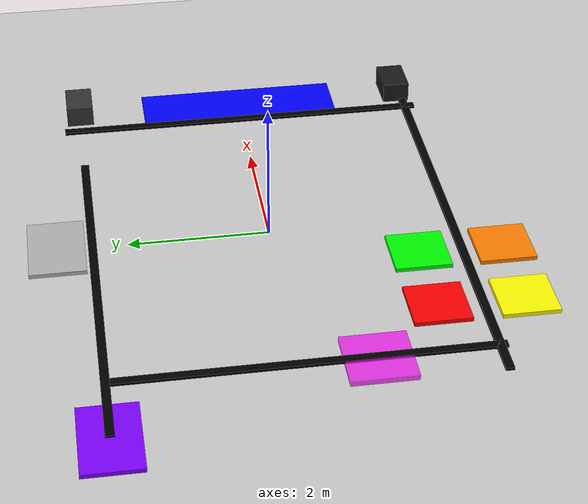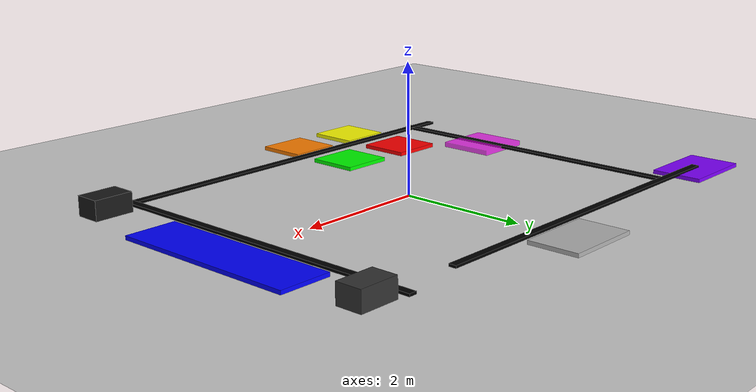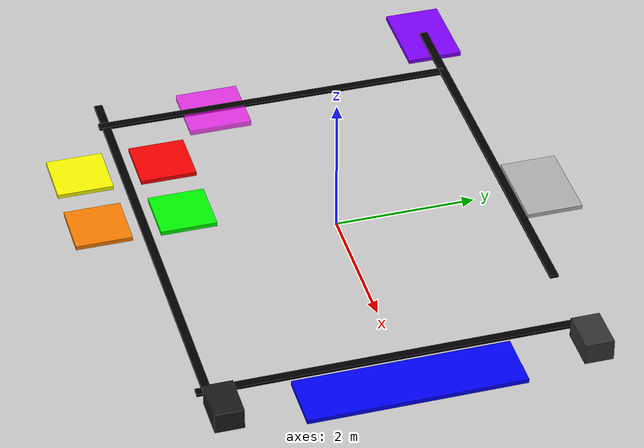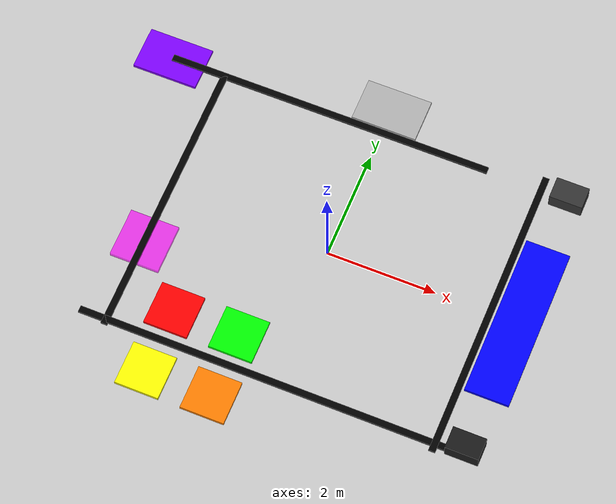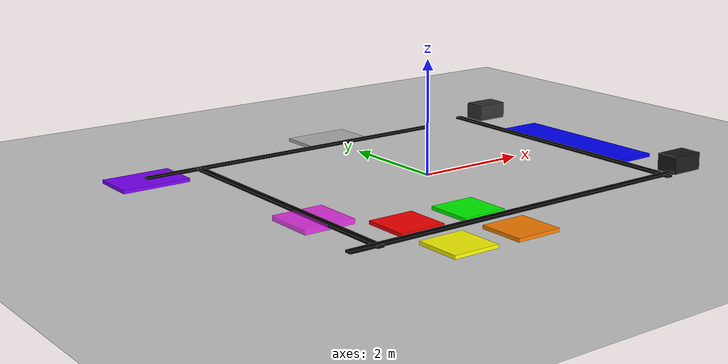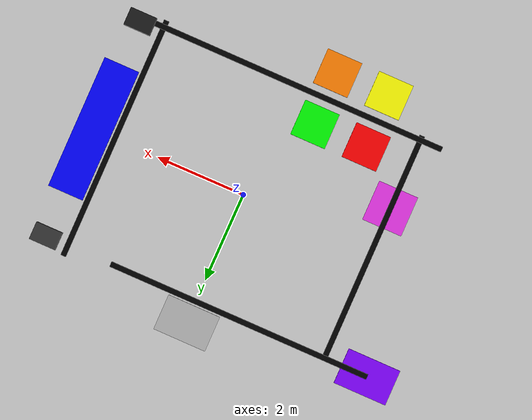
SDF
<?xml version="1.0" ?>
<sdf version="1.6">
  <world name="agv_factory_world">

    <include>
      <uri>model://sun</uri>
    </include>

    <include>
      <uri>model://ground_plane</uri>
    </include>

    <!-- A Zone -->
    <model name="zone_A">
      <static>true</static>
      <pose>-2 -2 0.03 0 0 0</pose>
      <link name="link">
        <visual name="visual">
          <geometry><box><size>0.8 0.8 0.06</size></box></geometry>
          <material><ambient>1 0 0 1</ambient><diffuse>1 0 0 1</diffuse></material>
        </visual>
        <collision name="collision">
          <geometry><box><size>0.8 0.8 0.06</size></box></geometry>
        </collision>
      </link>
    </model>

    <!-- B Zone -->
    <model name="zone_B">
      <static>true</static>
      <pose>-0.8 -2 0.03 0 0 0</pose>
      <link name="link">
        <visual name="visual">
          <geometry><box><size>0.8 0.8 0.06</size></box></geometry>
          <material><ambient>0 1 0 1</ambient><diffuse>0 1 0 1</diffuse></material>
        </visual>
        <collision name="collision">
          <geometry><box><size>0.8 0.8 0.06</size></box></geometry>
        </collision>
      </link>
    </model>

    <!-- C Zone -->
    <model name="zone_C">
      <static>true</static>
      <pose>-2 -3.2 0.03 0 0 0</pose>
      <link name="link">
        <visual name="visual">
          <geometry><box><size>0.8 0.8 0.06</size></box></geometry>
          <material><ambient>1 1 0 1</ambient><diffuse>1 1 0 1</diffuse></material>
        </visual>
        <collision name="collision">
          <geometry><box><size>0.8 0.8 0.06</size></box></geometry>
        </collision>
      </link>
    </model>

    <!-- D Zone -->
    <model name="zone_D">
      <static>true</static>
      <pose>-0.8 -3.2 0.03 0 0 0</pose>
      <link name="link">
        <visual name="visual">
          <geometry><box><size>0.8 0.8 0.06</size></box></geometry>
          <material><ambient>1 0.5 0 1</ambient><diffuse>1 0.5 0 1</diffuse></material>
        </visual>
        <collision name="collision">
          <geometry><box><size>0.8 0.8 0.06</size></box></geometry>
        </collision>
      </link>
    </model>

    <!-- Container Zone -->
    <model name="container_zone">
      <static>true</static>
      <pose>3.5 0 0.03 0 0 0</pose>
      <link name="link">
        <visual name="visual">
          <geometry><box><size>0.8 3.0 0.06</size></box></geometry>
          <material><ambient>0 0 1 1</ambient><diffuse>0 0 1 1</diffuse></material>
        </visual>
        <collision name="collision">
          <geometry><box><size>0.8 3.0 0.06</size></box></geometry>
        </collision>
      </link>
    </model>

    <!-- Final Box Zone -->
    <model name="final_box_zone">
      <static>true</static>
      <pose>0 3 0.03 0 0 0</pose>
      <link name="link">
        <visual name="visual">
          <geometry><box><size>1.2 0.8 0.06</size></box></geometry>
          <material><ambient>0.7 0.7 0.7 1</ambient><diffuse>0.7 0.7 0.7 1</diffuse></material>
        </visual>
        <collision name="collision">
          <geometry><box><size>1.2 0.8 0.06</size></box></geometry>
        </collision>
      </link>
    </model>

    <!-- In/Out Zone -->
    <model name="inout_zone">
      <static>true</static>
      <pose>-4 2.5 0.03 0 0 0</pose>
      <link name="link">
        <visual name="visual">
          <geometry><box><size>1.2 0.8 0.06</size></box></geometry>
          <material><ambient>0.5 0 1 1</ambient><diffuse>0.5 0 1 1</diffuse></material>
        </visual>
        <collision name="collision">
          <geometry><box><size>1.2 0.8 0.06</size></box></geometry>
        </collision>
      </link>
    </model>

    <!-- Cross Zone -->
    <model name="cross_zone">
      <static>true</static>
      <pose>-3 -1 0.04 0 0 0</pose>
      <link name="link">
        <visual name="visual">
          <geometry><box><size>0.9 0.9 0.08</size></box></geometry>
          <material><ambient>1 0 1 0.7</ambient><diffuse>1 0 1 0.7</diffuse></material>
        </visual>
        <collision name="collision">
          <geometry><box><size>0.9 0.9 0.08</size></box></geometry>
        </collision>
      </link>
    </model>

    <!-- Black Road Lines -->
    <model name="road_line_horizontal_1">
      <static>true</static>
      <pose>0 -2.6 0.07 0 0 0</pose>
      <link name="link">
        <visual name="visual">
          <geometry><box><size>7.0 0.12 0.04</size></box></geometry>
          <material><ambient>0 0 0 1</ambient><diffuse>0 0 0 1</diffuse></material>
        </visual>
      </link>
    </model>

    <model name="road_line_vertical_1">
      <static>true</static>
      <pose>3.0 0 0.07 0 0 0</pose>
      <link name="link">
        <visual name="visual">
          <geometry><box><size>0.12 5.5 0.04</size></box></geometry>
          <material><ambient>0 0 0 1</ambient><diffuse>0 0 0 1</diffuse></material>
        </visual>
      </link>
    </model>

    <model name="road_line_horizontal_2">
      <static>true</static>
      <pose>-1 2.5 0.07 0 0 0</pose>
      <link name="link">
        <visual name="visual">
          <geometry><box><size>6.0 0.12 0.04</size></box></geometry>
          <material><ambient>0 0 0 1</ambient><diffuse>0 0 0 1</diffuse></material>
        </visual>
      </link>
    </model>

    <model name="road_line_vertical_2">
      <static>true</static>
      <pose>-3 -0.1 0.07 0 0 0</pose>
      <link name="link">
        <visual name="visual">
          <geometry><box><size>0.12 5.2 0.04</size></box></geometry>
          <material><ambient>0 0 0 1</ambient><diffuse>0 0 0 1</diffuse></material>
        </visual>
      </link>
    </model>

    <!-- AGV01 -->
    <model name="agv01">
      <static>false</static>
      <pose>3.5 -2.5 0.2 0 0 0</pose>
      <link name="body">
        <visual name="visual">
          <geometry><box><size>0.6 0.4 0.3</size></box></geometry>
          <material><ambient>0.1 0.1 0.1 1</ambient><diffuse>0.1 0.1 0.1 1</diffuse></material>
        </visual>
        <collision name="collision">
          <geometry><box><size>0.6 0.4 0.3</size></box></geometry>
        </collision>
      </link>
    </model>

    <!-- AGV02 -->
    <model name="agv02">
      <static>false</static>
      <pose>3.5 2.5 0.2 0 0 0</pose>
      <link name="body">
        <visual name="visual">
          <geometry><box><size>0.6 0.4 0.3</size></box></geometry>
          <material><ambient>0.2 0.2 0.2 1</ambient><diffuse>0.2 0.2 0.2 1</diffuse></material>
        </visual>
        <collision name="collision">
          <geometry><box><size>0.6 0.4 0.3</size></box></geometry>
        </collision>
      </link>
    </model>

  </world>
</sdf>
